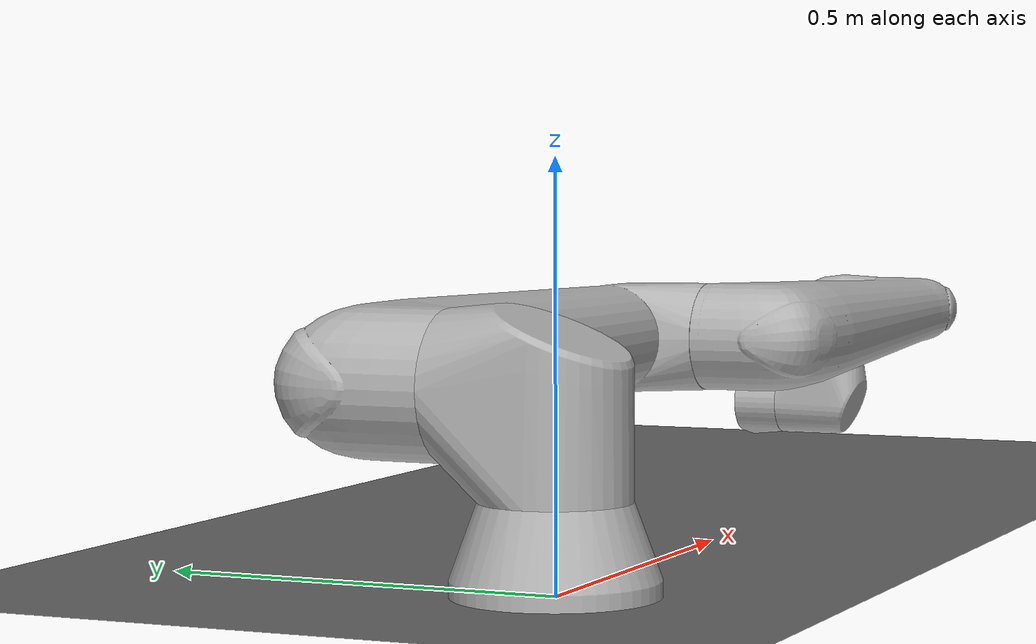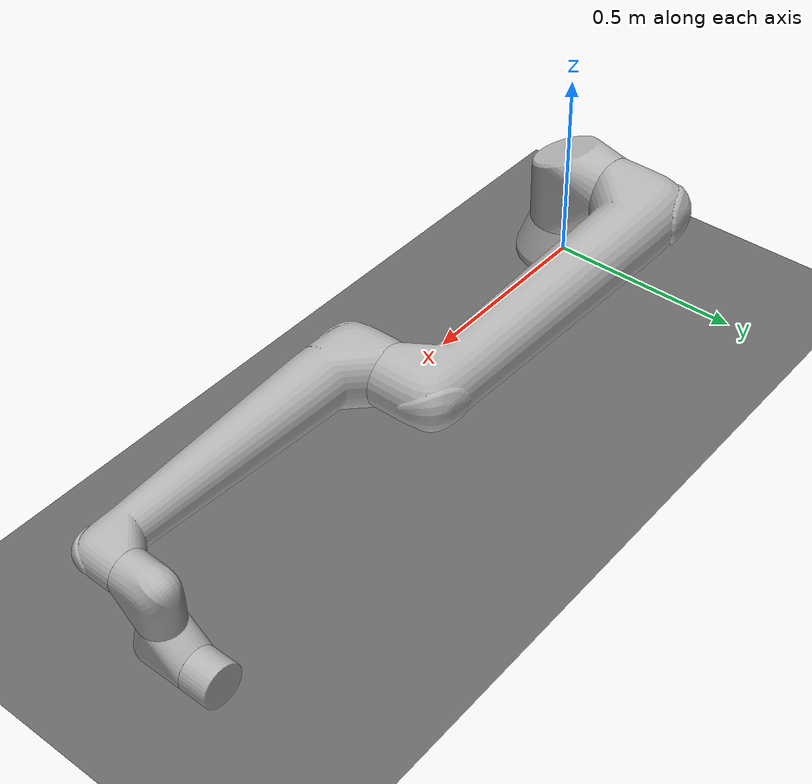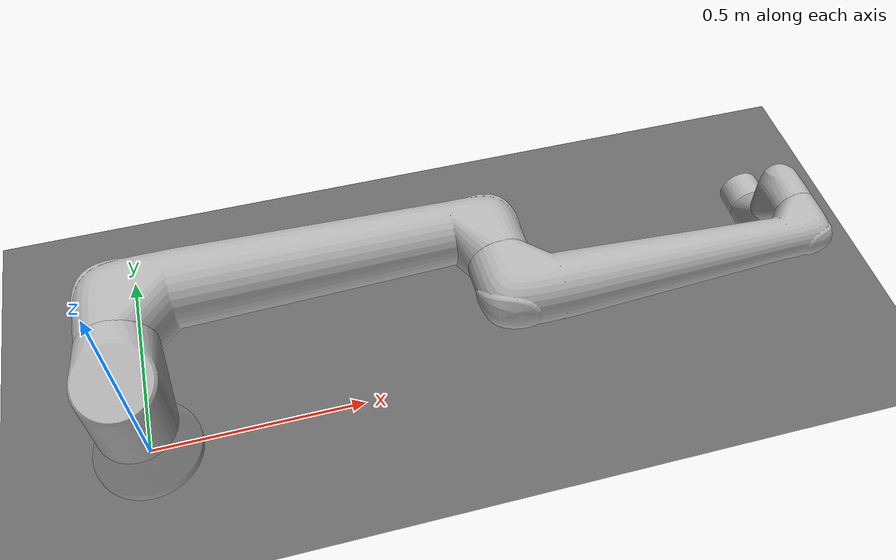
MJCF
<mujoco model="ur20_robot">
  <option iterations="50" timestep="0.001" solver="PGS" gravity="0 0 -9.81" />

  <compiler angle="radian" eulerseq="zyx" autolimits="true" />

  <default>
    <joint limited="true" damping="0.01" armature="0.01" frictionloss="0.01" />
    <geom condim="4" contype="1" conaffinity="15" friction="0.9 0.2 0.2" solref="0.001 2" />
    <motor ctrllimited="true" />
    <equality solref="0.001 2" />
    <default class="visualgeom">
      <geom material="visualgeom" condim="1" contype="0" conaffinity="0" />
    </default>
  </default>

  <asset>
    <mesh name="base" content_type="model/stl" file="meshes/ur20/collision/base.stl" />
    <mesh name="shoulder" content_type="model/stl" file="meshes/ur20/collision/shoulder.stl" />
    <mesh name="upperarm" content_type="model/stl" file="meshes/ur20/collision/upperarm.stl" />
    <mesh name="forearm" content_type="model/stl" file="meshes/ur20/collision/forearm.stl" />
    <mesh name="wrist1" content_type="model/stl" file="meshes/ur20/collision/wrist1.stl" />
    <mesh name="wrist2" content_type="model/stl" file="meshes/ur20/collision/wrist2.stl" />
    <mesh name="wrist3" content_type="model/stl" file="meshes/ur20/collision/wrist3.stl" />
    <texture name="texplane" type="2d" builtin="checker" rgb1=".0 .0 .0" rgb2=".8 .8 .8" width="100" height="100" />
    <material name="matplane" reflectance="0." texture="texplane" texrepeat="1 1" texuniform="true" />
    <material name="visualgeom" rgba="0.5 0.9 0.2 1" />
  </asset>

<!-- TEST TO SEE IF MATERIAL AND COLORS WILL BE IMPORTED AS WELL WITH DAE FILE -->

  <worldbody>
    <light directional="true" diffuse="0.4 0.4 0.4" specular="0.1 0.1 0.1" pos="0 0 5.0" dir="0 0 -1" castshadow="false" />
    <light directional="true" diffuse="0.6 0.6 0.6" specular="0.2 0.2 0.2" pos="0 0 4" dir="0 0 -1" />
    <geom name="ground" type="plane" pos="0 0 0" size="100 100 0.001" quat="1 0 0 0" material="matplane" condim="3" conaffinity="15" />
    <camera name="fixed" pos="0 -3.0 0.8141691543396815" xyaxes="1 0 0 0 0 1" />
    <camera name="track" mode="trackcom" pos="0 -3.0 0.8141691543396815" xyaxes="1 0 0 0 0 1" />
    <body name="root" pos="0 0 0" quat="1 0 0 0">
      <site name="imu" size="0.01" pos="0 0 0" />
      <geom pos="0 0 0" quat="-1 0 0 0" type="mesh" rgba="0.7 0.7 0.7 1" mesh="base" contype="1" conaffinity="0" density="0" group="1" class="visualgeom" />
      <geom type="mesh" rgba="0.7 0.7 0.7 1" mesh="base" pos="0 0 0" quat="-1 0 0 0" />
      <body name="shoulder_link" pos="0 0 0.2363" quat="0 0 0 1">
        <inertial pos="0 0 0" mass="16.343" diaginertia="0.0661333 0.0661333 0.0459647" />
        <joint name="shoulder_pan_joint" pos="0 0 0" axis="0 0 1" range="-6.28319 6.28319" actuatorfrcrange="-730 730" />
        <geom quat="0 0 0 1" type="mesh" rgba="0.7 0.7 0.7 1" mesh="shoulder" contype="1" conaffinity="0" density="0" group="1" class="visualgeom" />
        <geom type="mesh" rgba="0.7 0.7 0.7 1" mesh="shoulder" quat="0 0 0 1" />
        <body name="upper_arm_link" quat="0.707107 0.707107 0 0">
          <inertial pos="-0.426 0 0.275" mass="29.632" diaginertia="1.83417 1.83417 0.08334" />
          <joint name="shoulder_lift_joint" pos="0 0 0" axis="0 0 1" range="-6.28319 6.28319" actuatorfrcrange="-730 730" />
          <geom pos="0 0 0.26" quat="0.5 0.5 -0.5 -0.5" type="mesh" rgba="0.7 0.7 0.7 1" mesh="upperarm" contype="1" conaffinity="0" density="0" group="1" class="visualgeom" />
          <geom type="mesh" rgba="0.7 0.7 0.7 1" mesh="upperarm" pos="0 0 0.26" quat="0.5 0.5 -0.5 -0.5" />
          <body name="forearm_link" pos="-0.862 0 0">
            <inertial pos="-0.36435 0 0.043" mass="7.879" diaginertia="0.359728 0.359728 0.0221597" />
            <joint name="elbow_joint" pos="0 0 0" axis="0 0 1" range="-3.14159 3.14159" actuatorfrcrange="-430 430" />
            <geom pos="0 0 0.043" quat="0.5 0.5 -0.5 -0.5" type="mesh" rgba="0.7 0.7 0.7 1" mesh="forearm" contype="1" conaffinity="0" density="0" group="1" class="visualgeom" />
            <geom type="mesh" rgba="0.7 0.7 0.7 1" mesh="forearm" pos="0 0 0.043" quat="0.5 0.5 -0.5 -0.5" />
            <body name="wrist_1_link" pos="-0.7287 0 0.201">
              <inertial pos="0 0 0" quat="0.5 0.5 -0.5 0.5" mass="3.054" diaginertia="0.00858937 0.00795948 0.00795948" />
              <joint name="wrist_1_joint" pos="0 0 0" axis="0 0 1" range="-6.28319 6.28319" actuatorfrcrange="-100 100" />
              <geom pos="0 0 -0.0775" quat="0.707107 0.707107 0 0" type="mesh" rgba="0.7 0.7 0.7 1" mesh="wrist1" contype="1" conaffinity="0" density="0" group="1" class="visualgeom" />
              <geom type="mesh" rgba="0.7 0.7 0.7 1" mesh="wrist1" pos="0 0 -0.0775" quat="0.707107 0.707107 0 0" />
              <body name="wrist_2_link" pos="0 -0.1593 -3.2673e-11" quat="0.707107 0.707107 0 0">
                <inertial pos="0 0 0" quat="0.5 0.5 -0.5 0.5" mass="3.126" diaginertia="0.00879187 0.00814713 0.00814713" />
                <joint name="wrist_2_joint" pos="0 0 0" axis="0 0 1" range="-6.28319 6.28319" actuatorfrcrange="-100 100" />
                <geom pos="0 0 -0.0749" quat="1 0 0 0" type="mesh" rgba="0.7 0.7 0.7 1" mesh="wrist2" contype="1" conaffinity="0" density="0" group="1" class="visualgeom" />
                <geom type="mesh" rgba="0.7 0.7 0.7 1" mesh="wrist2" pos="0 0 -0.0749" quat="1 0 0 0" />
                <body name="wrist_3_link" pos="0 0.1543 -3.16475e-11" quat="0.707107 -0.707107 0 0">
                  <inertial pos="0 0 -0.025" quat="0.5 0.5 -0.5 0.5" mass="0.846" diaginertia="0.000856575 0.000604537 0.000604537" />
                  <joint name="wrist_3_joint" pos="0 0 0" axis="0 0 1" range="-6.28319 6.28319" actuatorfrcrange="-100 100" />
                  <geom pos="0 0 -0.07" quat="0.707107 0.707107 0 0" type="mesh" rgba="0.7 0.7 0.7 1" mesh="wrist3" contype="1" conaffinity="0" density="0" group="1" class="visualgeom" />
                  <geom type="mesh" rgba="0.7 0.7 0.7 1" mesh="wrist3" pos="0 0 -0.07" quat="0.707107 0.707107 0 0" />
                </body>
              </body>
            </body>
          </body>
        </body>
      </body>
    </body>
  </worldbody>

  <actuator>
    <motor name="shoulder_pan_joint" joint="shoulder_pan_joint" ctrllimited="true" ctrlrange="-730 730" gear="1" />
    <motor name="shoulder_lift_joint" joint="shoulder_lift_joint" ctrllimited="true" ctrlrange="-730 730" gear="1" />
    <motor name="elbow_joint" joint="elbow_joint" ctrllimited="true" ctrlrange="-430 430" gear="1" />
    <motor name="wrist_1_joint" joint="wrist_1_joint" ctrllimited="true" ctrlrange="-100 100" gear="1" />
    <motor name="wrist_2_joint" joint="wrist_2_joint" ctrllimited="true" ctrlrange="-100 100" gear="1" />
    <motor name="wrist_3_joint" joint="wrist_3_joint" ctrllimited="true" ctrlrange="-100 100" gear="1" />
  </actuator>

  <sensor>
    <actuatorpos name="shoulder_pan_joint_p" actuator="shoulder_pan_joint" />
    <actuatorvel name="shoulder_pan_joint_v" actuator="shoulder_pan_joint" />
    <actuatorfrc name="shoulder_pan_joint_f" actuator="shoulder_pan_joint" noise="0.001" />
    <actuatorpos name="shoulder_lift_joint_p" actuator="shoulder_lift_joint" />
    <actuatorvel name="shoulder_lift_joint_v" actuator="shoulder_lift_joint" />
    <actuatorfrc name="shoulder_lift_joint_f" actuator="shoulder_lift_joint" noise="0.001" />
    <actuatorpos name="elbow_joint_p" actuator="elbow_joint" />
    <actuatorvel name="elbow_joint_v" actuator="elbow_joint" />
    <actuatorfrc name="elbow_joint_f" actuator="elbow_joint" noise="0.001" />
    <actuatorpos name="wrist_1_joint_p" actuator="wrist_1_joint" />
    <actuatorvel name="wrist_1_joint_v" actuator="wrist_1_joint" />
    <actuatorfrc name="wrist_1_joint_f" actuator="wrist_1_joint" noise="0.001" />
    <actuatorpos name="wrist_2_joint_p" actuator="wrist_2_joint" />
    <actuatorvel name="wrist_2_joint_v" actuator="wrist_2_joint" />
    <actuatorfrc name="wrist_2_joint_f" actuator="wrist_2_joint" noise="0.001" />
    <actuatorpos name="wrist_3_joint_p" actuator="wrist_3_joint" />
    <actuatorvel name="wrist_3_joint_v" actuator="wrist_3_joint" />
    <actuatorfrc name="wrist_3_joint_f" actuator="wrist_3_joint" noise="0.001" />
    <framequat name="orientation" objtype="site" noise="0.001" objname="imu" />
    <gyro name="angular-velocity" site="imu" noise="0.005" cutoff="34.9" />
  </sensor>
</mujoco>
